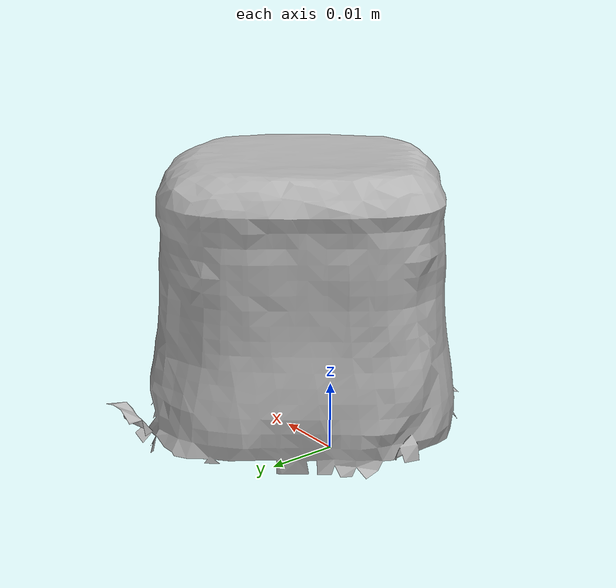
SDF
<?xml version='1.0'?>
<sdf version="1.4">
  <model name="l_lego_duplo">
    <static>false</static>
    <link name="link">
      <inertial>
        <pose>0.0021105867011519514 0.002944208566373363 0.025260479455036424 0.4743521347076071 -1.531722580771217 -2.6083883275415043</pose>
        <mass>4.6457166154870454e-05</mass>
        <inertia>
          <ixx>9.802524578022325e-09</ixx>
          <ixy>-7.542646125647547e-25</ixy>
          <ixz>-8.06898741486815e-25</ixz>
          <iyy>7.751042538054708e-09</iyy>
          <iyz>2.046910094756796e-24</iyz>
          <izz>7.668183954124966e-09</izz>
        </inertia>
      </inertial>
      <collision name="collision">
        <geometry>
          <mesh>
            <!-- Use a downsampled mesh for collisions -->
            <uri>model://073-l_lego_duplo/downsampled.obj</uri>
	        </mesh>
        </geometry>
        <surface>
      </surface>
      </collision>
      <visual name="visual">
        <geometry>
          <mesh>
            <uri>model://073-l_lego_duplo/tsdf/textured.obj</uri>
	        </mesh>
        </geometry>
        <material>
          <script>
            <uri>model://073-l_lego_duplo/l_lego_duplo.material</uri>
            <name>l_lego_duplo</name>
          </script>
        </material>
      </visual>
    </link>
  </model>
</sdf>
